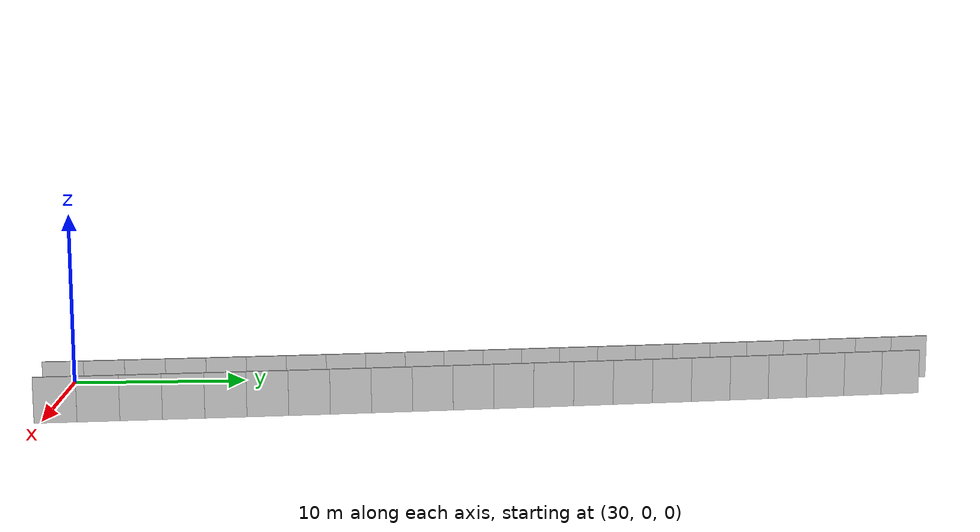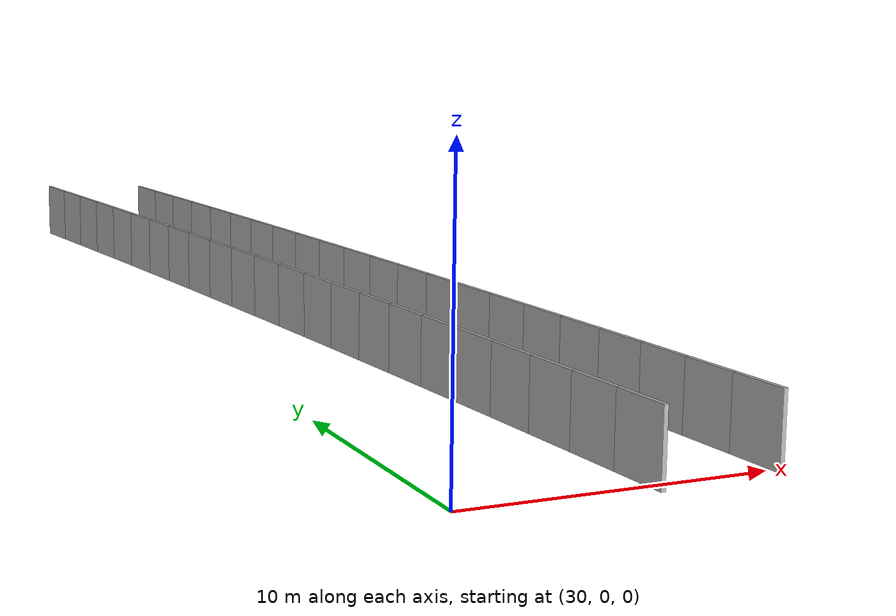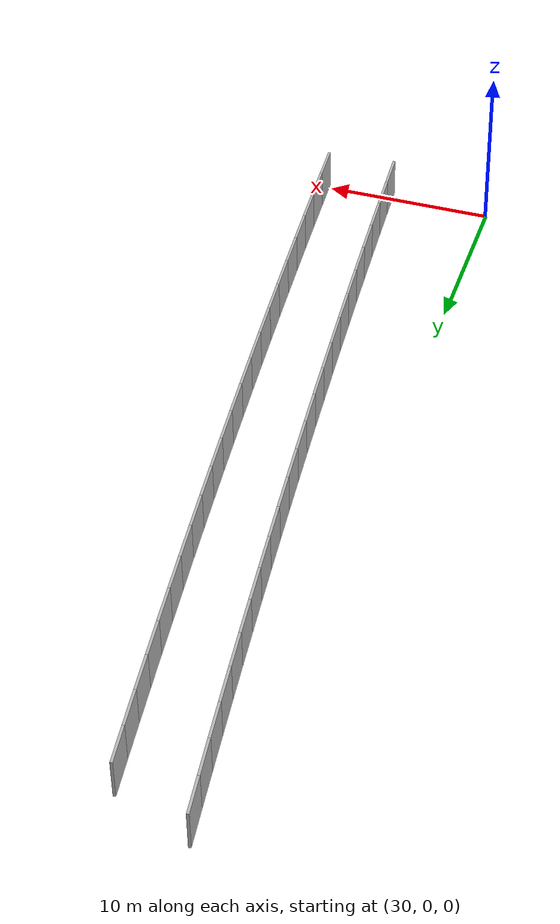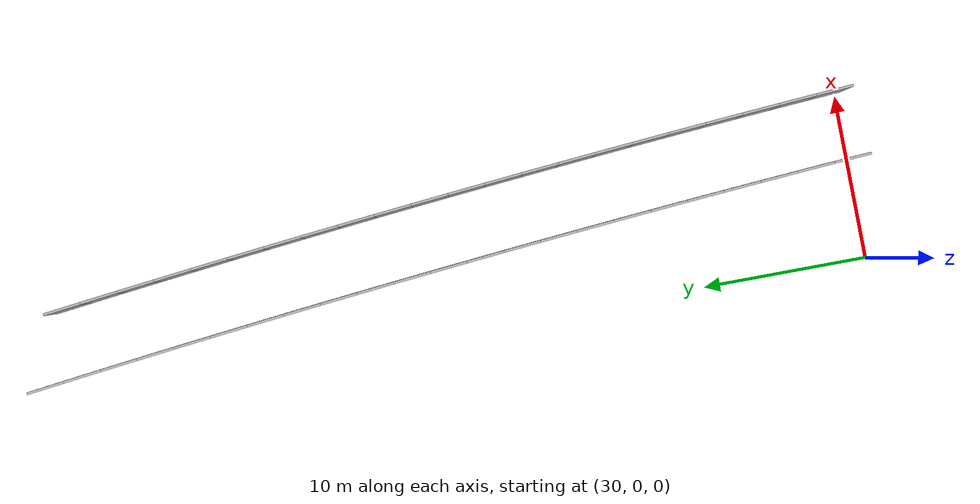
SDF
<?xml version="1.0" ?>
<sdf version="1.6">
  <model name="sps_4626">
    <pose frame="">0 0 0 0 -0 0</pose>
    <static>1</static>
    <self_collide>0</self_collide>
    <allow_auto_disable>0</allow_auto_disable>
    <link name="Wall4576">
      <kinematic>0</kinematic>
      <gravity>1</gravity>
      <self_collide>0</self_collide>
      <collision name="collision">
        <geometry>
          <box>
            <size>2.25473 0.15 2.5</size>
          </box>
        </geometry>
        <pose frame="">0 0 0 0 -0 0</pose>
      </collision>
      <visual name="visual">
        <geometry>
          <box>
            <size>2.25473 0.15 2.5</size>
          </box>
        </geometry>
        <pose frame="">0 0 0 0 -0 0</pose>
        <cast_shadows>1</cast_shadows>
        <transparency>0.0</transparency>
      </visual>
      <pose frame="">40.2125 0.755813 1.25 0 -0 1.63961</pose>
    </link>
    <link name="Wall4577">
      <kinematic>0</kinematic>
      <gravity>1</gravity>
      <self_collide>0</self_collide>
      <collision name="collision">
        <geometry>
          <box>
            <size>2.25463 0.15 2.5</size>
          </box>
        </geometry>
        <pose frame="">0 0 0 0 -0 0</pose>
      </collision>
      <visual name="visual">
        <geometry>
          <box>
            <size>2.25463 0.15 2.5</size>
          </box>
        </geometry>
        <pose frame="">0 0 0 0 -0 0</pose>
        <cast_shadows>1</cast_shadows>
        <transparency>0.0</transparency>
      </visual>
      <pose frame="">40.0551 3.00499 1.25 0 -0 1.64173</pose>
    </link>
    <link name="Wall4578">
      <kinematic>0</kinematic>
      <gravity>1</gravity>
      <self_collide>0</self_collide>
      <collision name="collision">
        <geometry>
          <box>
            <size>2.2545 0.15 2.5</size>
          </box>
        </geometry>
        <pose frame="">0 0 0 0 -0 0</pose>
      </collision>
      <visual name="visual">
        <geometry>
          <box>
            <size>2.2545 0.15 2.5</size>
          </box>
        </geometry>
        <pose frame="">0 0 0 0 -0 0</pose>
        <cast_shadows>1</cast_shadows>
        <transparency>0.0</transparency>
      </visual>
      <pose frame="">39.8924 5.25368 1.25 0 -0 1.64431</pose>
    </link>
    <link name="Wall4579">
      <kinematic>0</kinematic>
      <gravity>1</gravity>
      <self_collide>0</self_collide>
      <collision name="collision">
        <geometry>
          <box>
            <size>2.25469 0.15 2.5</size>
          </box>
        </geometry>
        <pose frame="">0 0 0 0 -0 0</pose>
      </collision>
      <visual name="visual">
        <geometry>
          <box>
            <size>2.25469 0.15 2.5</size>
          </box>
        </geometry>
        <pose frame="">0 0 0 0 -0 0</pose>
        <cast_shadows>1</cast_shadows>
        <transparency>0.0</transparency>
      </visual>
      <pose frame="">39.7244 7.502 1.25 0 -0 1.64653</pose>
    </link>
    <link name="Wall4580">
      <kinematic>0</kinematic>
      <gravity>1</gravity>
      <self_collide>0</self_collide>
      <collision name="collision">
        <geometry>
          <box>
            <size>2.2547 0.15 2.5</size>
          </box>
        </geometry>
        <pose frame="">0 0 0 0 -0 0</pose>
      </collision>
      <visual name="visual">
        <geometry>
          <box>
            <size>2.2547 0.15 2.5</size>
          </box>
        </geometry>
        <pose frame="">0 0 0 0 -0 0</pose>
        <cast_shadows>1</cast_shadows>
        <transparency>0.0</transparency>
      </visual>
      <pose frame="">39.551 9.75001 1.25 0 -0 1.64903</pose>
    </link>
    <link name="Wall4581">
      <kinematic>0</kinematic>
      <gravity>1</gravity>
      <self_collide>0</self_collide>
      <collision name="collision">
        <geometry>
          <box>
            <size>2.2545 0.15 2.5</size>
          </box>
        </geometry>
        <pose frame="">0 0 0 0 -0 0</pose>
      </collision>
      <visual name="visual">
        <geometry>
          <box>
            <size>2.2545 0.15 2.5</size>
          </box>
        </geometry>
        <pose frame="">0 0 0 0 -0 0</pose>
        <cast_shadows>1</cast_shadows>
        <transparency>0.0</transparency>
      </visual>
      <pose frame="">39.3722 11.9975 1.25 0 -0 1.65134</pose>
    </link>
    <link name="Wall4582">
      <kinematic>0</kinematic>
      <gravity>1</gravity>
      <self_collide>0</self_collide>
      <collision name="collision">
        <geometry>
          <box>
            <size>2.25452 0.15 2.5</size>
          </box>
        </geometry>
        <pose frame="">0 0 0 0 -0 0</pose>
      </collision>
      <visual name="visual">
        <geometry>
          <box>
            <size>2.25452 0.15 2.5</size>
          </box>
        </geometry>
        <pose frame="">0 0 0 0 -0 0</pose>
        <cast_shadows>1</cast_shadows>
        <transparency>0.0</transparency>
      </visual>
      <pose frame="">39.188 14.2445 1.25 0 -0 1.65376</pose>
    </link>
    <link name="Wall4583">
      <kinematic>0</kinematic>
      <gravity>1</gravity>
      <self_collide>0</self_collide>
      <collision name="collision">
        <geometry>
          <box>
            <size>2.25388 0.15 2.5</size>
          </box>
        </geometry>
        <pose frame="">0 0 0 0 -0 0</pose>
      </collision>
      <visual name="visual">
        <geometry>
          <box>
            <size>2.25388 0.15 2.5</size>
          </box>
        </geometry>
        <pose frame="">0 0 0 0 -0 0</pose>
        <cast_shadows>1</cast_shadows>
        <transparency>0.0</transparency>
      </visual>
      <pose frame="">38.9981 16.4907 1.25 0 -0 1.65653</pose>
    </link>
    <link name="Wall4584">
      <kinematic>0</kinematic>
      <gravity>1</gravity>
      <self_collide>0</self_collide>
      <collision name="collision">
        <geometry>
          <box>
            <size>2.25489 0.15 2.5</size>
          </box>
        </geometry>
        <pose frame="">0 0 0 0 -0 0</pose>
      </collision>
      <visual name="visual">
        <geometry>
          <box>
            <size>2.25489 0.15 2.5</size>
          </box>
        </geometry>
        <pose frame="">0 0 0 0 -0 0</pose>
        <cast_shadows>1</cast_shadows>
        <transparency>0.0</transparency>
      </visual>
      <pose frame="">38.8028 18.7366 1.25 0 -0 1.65853</pose>
    </link>
    <link name="Wall4585">
      <kinematic>0</kinematic>
      <gravity>1</gravity>
      <self_collide>0</self_collide>
      <collision name="collision">
        <geometry>
          <box>
            <size>2.25432 0.15 2.5</size>
          </box>
        </geometry>
        <pose frame="">0 0 0 0 -0 0</pose>
      </collision>
      <visual name="visual">
        <geometry>
          <box>
            <size>2.25432 0.15 2.5</size>
          </box>
        </geometry>
        <pose frame="">0 0 0 0 -0 0</pose>
        <cast_shadows>1</cast_shadows>
        <transparency>0.0</transparency>
      </visual>
      <pose frame="">38.6027 20.9823 1.25 0 -0 1.66089</pose>
    </link>
    <link name="Wall4586">
      <kinematic>0</kinematic>
      <gravity>1</gravity>
      <self_collide>0</self_collide>
      <collision name="collision">
        <geometry>
          <box>
            <size>2.25487 0.15 2.5</size>
          </box>
        </geometry>
        <pose frame="">0 0 0 0 -0 0</pose>
      </collision>
      <visual name="visual">
        <geometry>
          <box>
            <size>2.25487 0.15 2.5</size>
          </box>
        </geometry>
        <pose frame="">0 0 0 0 -0 0</pose>
        <cast_shadows>1</cast_shadows>
        <transparency>0.0</transparency>
      </visual>
      <pose frame="">38.3971 23.2275 1.25 0 -0 1.66326</pose>
    </link>
    <link name="Wall4587">
      <kinematic>0</kinematic>
      <gravity>1</gravity>
      <self_collide>0</self_collide>
      <collision name="collision">
        <geometry>
          <box>
            <size>2.25453 0.15 2.5</size>
          </box>
        </geometry>
        <pose frame="">0 0 0 0 -0 0</pose>
      </collision>
      <visual name="visual">
        <geometry>
          <box>
            <size>2.25453 0.15 2.5</size>
          </box>
        </geometry>
        <pose frame="">0 0 0 0 -0 0</pose>
        <cast_shadows>1</cast_shadows>
        <transparency>0.0</transparency>
      </visual>
      <pose frame="">38.1862 25.4723 1.25 0 -0 1.66569</pose>
    </link>
    <link name="Wall4588">
      <kinematic>0</kinematic>
      <gravity>1</gravity>
      <self_collide>0</self_collide>
      <collision name="collision">
        <geometry>
          <box>
            <size>2.25441 0.15 2.5</size>
          </box>
        </geometry>
        <pose frame="">0 0 0 0 -0 0</pose>
      </collision>
      <visual name="visual">
        <geometry>
          <box>
            <size>2.25441 0.15 2.5</size>
          </box>
        </geometry>
        <pose frame="">0 0 0 0 -0 0</pose>
        <cast_shadows>1</cast_shadows>
        <transparency>0.0</transparency>
      </visual>
      <pose frame="">37.9701 27.7164 1.25 0 -0 1.66798</pose>
    </link>
    <link name="Wall4589">
      <kinematic>0</kinematic>
      <gravity>1</gravity>
      <self_collide>0</self_collide>
      <collision name="collision">
        <geometry>
          <box>
            <size>2.25475 0.15 2.5</size>
          </box>
        </geometry>
        <pose frame="">0 0 0 0 -0 0</pose>
      </collision>
      <visual name="visual">
        <geometry>
          <box>
            <size>2.25475 0.15 2.5</size>
          </box>
        </geometry>
        <pose frame="">0 0 0 0 -0 0</pose>
        <cast_shadows>1</cast_shadows>
        <transparency>0.0</transparency>
      </visual>
      <pose frame="">37.7487 29.9601 1.25 0 -0 1.67031</pose>
    </link>
    <link name="Wall4590">
      <kinematic>0</kinematic>
      <gravity>1</gravity>
      <self_collide>0</self_collide>
      <collision name="collision">
        <geometry>
          <box>
            <size>2.25458 0.15 2.5</size>
          </box>
        </geometry>
        <pose frame="">0 0 0 0 -0 0</pose>
      </collision>
      <visual name="visual">
        <geometry>
          <box>
            <size>2.25458 0.15 2.5</size>
          </box>
        </geometry>
        <pose frame="">0 0 0 0 -0 0</pose>
        <cast_shadows>1</cast_shadows>
        <transparency>0.0</transparency>
      </visual>
      <pose frame="">37.5219 32.2033 1.25 0 -0 1.67282</pose>
    </link>
    <link name="Wall4591">
      <kinematic>0</kinematic>
      <gravity>1</gravity>
      <self_collide>0</self_collide>
      <collision name="collision">
        <geometry>
          <box>
            <size>2.25481 0.15 2.5</size>
          </box>
        </geometry>
        <pose frame="">0 0 0 0 -0 0</pose>
      </collision>
      <visual name="visual">
        <geometry>
          <box>
            <size>2.25481 0.15 2.5</size>
          </box>
        </geometry>
        <pose frame="">0 0 0 0 -0 0</pose>
        <cast_shadows>1</cast_shadows>
        <transparency>0.0</transparency>
      </visual>
      <pose frame="">37.2897 34.446 1.25 0 -0 1.67512</pose>
    </link>
    <link name="Wall4592">
      <kinematic>0</kinematic>
      <gravity>1</gravity>
      <self_collide>0</self_collide>
      <collision name="collision">
        <geometry>
          <box>
            <size>2.25463 0.15 2.5</size>
          </box>
        </geometry>
        <pose frame="">0 0 0 0 -0 0</pose>
      </collision>
      <visual name="visual">
        <geometry>
          <box>
            <size>2.25463 0.15 2.5</size>
          </box>
        </geometry>
        <pose frame="">0 0 0 0 -0 0</pose>
        <cast_shadows>1</cast_shadows>
        <transparency>0.0</transparency>
      </visual>
      <pose frame="">37.0523 36.6882 1.25 0 -0 1.67744</pose>
    </link>
    <link name="Wall4593">
      <kinematic>0</kinematic>
      <gravity>1</gravity>
      <self_collide>0</self_collide>
      <collision name="collision">
        <geometry>
          <box>
            <size>2.25465 0.15 2.5</size>
          </box>
        </geometry>
        <pose frame="">0 0 0 0 -0 0</pose>
      </collision>
      <visual name="visual">
        <geometry>
          <box>
            <size>2.25465 0.15 2.5</size>
          </box>
        </geometry>
        <pose frame="">0 0 0 0 -0 0</pose>
        <cast_shadows>1</cast_shadows>
        <transparency>0.0</transparency>
      </visual>
      <pose frame="">36.8094 38.9297 1.25 0 -0 1.68003</pose>
    </link>
    <link name="Wall4594">
      <kinematic>0</kinematic>
      <gravity>1</gravity>
      <self_collide>0</self_collide>
      <collision name="collision">
        <geometry>
          <box>
            <size>2.25457 0.15 2.5</size>
          </box>
        </geometry>
        <pose frame="">0 0 0 0 -0 0</pose>
      </collision>
      <visual name="visual">
        <geometry>
          <box>
            <size>2.25457 0.15 2.5</size>
          </box>
        </geometry>
        <pose frame="">0 0 0 0 -0 0</pose>
        <cast_shadows>1</cast_shadows>
        <transparency>0.0</transparency>
      </visual>
      <pose frame="">36.5612 41.1706 1.25 0 -0 1.68218</pose>
    </link>
    <link name="Wall4595">
      <kinematic>0</kinematic>
      <gravity>1</gravity>
      <self_collide>0</self_collide>
      <collision name="collision">
        <geometry>
          <box>
            <size>2.2546 0.15 2.5</size>
          </box>
        </geometry>
        <pose frame="">0 0 0 0 -0 0</pose>
      </collision>
      <visual name="visual">
        <geometry>
          <box>
            <size>2.2546 0.15 2.5</size>
          </box>
        </geometry>
        <pose frame="">0 0 0 0 -0 0</pose>
        <cast_shadows>1</cast_shadows>
        <transparency>0.0</transparency>
      </visual>
      <pose frame="">36.3078 43.4109 1.25 0 -0 1.68469</pose>
    </link>
    <link name="Wall4596">
      <kinematic>0</kinematic>
      <gravity>1</gravity>
      <self_collide>0</self_collide>
      <collision name="collision">
        <geometry>
          <box>
            <size>2.25459 0.15 2.5</size>
          </box>
        </geometry>
        <pose frame="">0 0 0 0 -0 0</pose>
      </collision>
      <visual name="visual">
        <geometry>
          <box>
            <size>2.25459 0.15 2.5</size>
          </box>
        </geometry>
        <pose frame="">0 0 0 0 -0 0</pose>
        <cast_shadows>1</cast_shadows>
        <transparency>0.0</transparency>
      </visual>
      <pose frame="">36.0489 45.6506 1.25 0 -0 1.68701</pose>
    </link>
    <link name="Wall4597">
      <kinematic>0</kinematic>
      <gravity>1</gravity>
      <self_collide>0</self_collide>
      <collision name="collision">
        <geometry>
          <box>
            <size>2.25467 0.15 2.5</size>
          </box>
        </geometry>
        <pose frame="">0 0 0 0 -0 0</pose>
      </collision>
      <visual name="visual">
        <geometry>
          <box>
            <size>2.25467 0.15 2.5</size>
          </box>
        </geometry>
        <pose frame="">0 0 0 0 -0 0</pose>
        <cast_shadows>1</cast_shadows>
        <transparency>0.0</transparency>
      </visual>
      <pose frame="">35.7848 47.8897 1.25 0 -0 1.6894</pose>
    </link>
    <link name="Wall6301">
      <kinematic>0</kinematic>
      <gravity>1</gravity>
      <self_collide>0</self_collide>
      <collision name="collision">
        <geometry>
          <box>
            <size>2.24467 0.15 2.5</size>
          </box>
        </geometry>
        <pose frame="">0 0 0 0 -0 0</pose>
      </collision>
      <visual name="visual">
        <geometry>
          <box>
            <size>2.24467 0.15 2.5</size>
          </box>
        </geometry>
        <pose frame="">0 0 0 0 -0 0</pose>
        <cast_shadows>1</cast_shadows>
        <transparency>0.0</transparency>
      </visual>
      <pose frame="">36.0831 0.471389 1.25 0 -0 1.63945</pose>
    </link>
    <link name="Wall6302">
      <kinematic>0</kinematic>
      <gravity>1</gravity>
      <self_collide>0</self_collide>
      <collision name="collision">
        <geometry>
          <box>
            <size>2.24486 0.15 2.5</size>
          </box>
        </geometry>
        <pose frame="">0 0 0 0 -0 0</pose>
      </collision>
      <visual name="visual">
        <geometry>
          <box>
            <size>2.24486 0.15 2.5</size>
          </box>
        </geometry>
        <pose frame="">0 0 0 0 -0 0</pose>
        <cast_shadows>1</cast_shadows>
        <transparency>0.0</transparency>
      </visual>
      <pose frame="">35.9264 2.71068 1.25 0 -0 1.64187</pose>
    </link>
    <link name="Wall6303">
      <kinematic>0</kinematic>
      <gravity>1</gravity>
      <self_collide>0</self_collide>
      <collision name="collision">
        <geometry>
          <box>
            <size>2.24507 0.15 2.5</size>
          </box>
        </geometry>
        <pose frame="">0 0 0 0 -0 0</pose>
      </collision>
      <visual name="visual">
        <geometry>
          <box>
            <size>2.24507 0.15 2.5</size>
          </box>
        </geometry>
        <pose frame="">0 0 0 0 -0 0</pose>
        <cast_shadows>1</cast_shadows>
        <transparency>0.0</transparency>
      </visual>
      <pose frame="">35.7642 4.94978 1.25 0 -0 1.64427</pose>
    </link>
    <link name="Wall6304">
      <kinematic>0</kinematic>
      <gravity>1</gravity>
      <self_collide>0</self_collide>
      <collision name="collision">
        <geometry>
          <box>
            <size>2.24467 0.15 2.5</size>
          </box>
        </geometry>
        <pose frame="">0 0 0 0 -0 0</pose>
      </collision>
      <visual name="visual">
        <geometry>
          <box>
            <size>2.24467 0.15 2.5</size>
          </box>
        </geometry>
        <pose frame="">0 0 0 0 -0 0</pose>
        <cast_shadows>1</cast_shadows>
        <transparency>0.0</transparency>
      </visual>
      <pose frame="">35.5969 7.1884 1.25 0 -0 1.6466</pose>
    </link>
    <link name="Wall6305">
      <kinematic>0</kinematic>
      <gravity>1</gravity>
      <self_collide>0</self_collide>
      <collision name="collision">
        <geometry>
          <box>
            <size>2.24466 0.15 2.5</size>
          </box>
        </geometry>
        <pose frame="">0 0 0 0 -0 0</pose>
      </collision>
      <visual name="visual">
        <geometry>
          <box>
            <size>2.24466 0.15 2.5</size>
          </box>
        </geometry>
        <pose frame="">0 0 0 0 -0 0</pose>
        <cast_shadows>1</cast_shadows>
        <transparency>0.0</transparency>
      </visual>
      <pose frame="">35.4242 9.42641 1.25 0 -0 1.64902</pose>
    </link>
    <link name="Wall6306">
      <kinematic>0</kinematic>
      <gravity>1</gravity>
      <self_collide>0</self_collide>
      <collision name="collision">
        <geometry>
          <box>
            <size>2.24489 0.15 2.5</size>
          </box>
        </geometry>
        <pose frame="">0 0 0 0 -0 0</pose>
      </collision>
      <visual name="visual">
        <geometry>
          <box>
            <size>2.24489 0.15 2.5</size>
          </box>
        </geometry>
        <pose frame="">0 0 0 0 -0 0</pose>
        <cast_shadows>1</cast_shadows>
        <transparency>0.0</transparency>
      </visual>
      <pose frame="">35.2461 11.6641 1.25 0 -0 1.65133</pose>
    </link>
    <link name="Wall6307">
      <kinematic>0</kinematic>
      <gravity>1</gravity>
      <self_collide>0</self_collide>
      <collision name="collision">
        <geometry>
          <box>
            <size>2.2449 0.15 2.5</size>
          </box>
        </geometry>
        <pose frame="">0 0 0 0 -0 0</pose>
      </collision>
      <visual name="visual">
        <geometry>
          <box>
            <size>2.2449 0.15 2.5</size>
          </box>
        </geometry>
        <pose frame="">0 0 0 0 -0 0</pose>
        <cast_shadows>1</cast_shadows>
        <transparency>0.0</transparency>
      </visual>
      <pose frame="">35.0629 13.9015 1.25 0 -0 1.65373</pose>
    </link>
    <link name="Wall6308">
      <kinematic>0</kinematic>
      <gravity>1</gravity>
      <self_collide>0</self_collide>
      <collision name="collision">
        <geometry>
          <box>
            <size>2.24366 0.15 2.5</size>
          </box>
        </geometry>
        <pose frame="">0 0 0 0 -0 0</pose>
      </collision>
      <visual name="visual">
        <geometry>
          <box>
            <size>2.24366 0.15 2.5</size>
          </box>
        </geometry>
        <pose frame="">0 0 0 0 -0 0</pose>
        <cast_shadows>1</cast_shadows>
        <transparency>0.0</transparency>
      </visual>
      <pose frame="">34.8738 16.1378 1.25 0 -0 1.65656</pose>
    </link>
    <link name="Wall6309">
      <kinematic>0</kinematic>
      <gravity>1</gravity>
      <self_collide>0</self_collide>
      <collision name="collision">
        <geometry>
          <box>
            <size>2.24501 0.15 2.5</size>
          </box>
        </geometry>
        <pose frame="">0 0 0 0 -0 0</pose>
      </collision>
      <visual name="visual">
        <geometry>
          <box>
            <size>2.24501 0.15 2.5</size>
          </box>
        </geometry>
        <pose frame="">0 0 0 0 -0 0</pose>
        <cast_shadows>1</cast_shadows>
        <transparency>0.0</transparency>
      </visual>
      <pose frame="">34.6794 18.3737 1.25 0 -0 1.65848</pose>
    </link>
    <link name="Wall6310">
      <kinematic>0</kinematic>
      <gravity>1</gravity>
      <self_collide>0</self_collide>
      <collision name="collision">
        <geometry>
          <box>
            <size>2.24469 0.15 2.5</size>
          </box>
        </geometry>
        <pose frame="">0 0 0 0 -0 0</pose>
      </collision>
      <visual name="visual">
        <geometry>
          <box>
            <size>2.24469 0.15 2.5</size>
          </box>
        </geometry>
        <pose frame="">0 0 0 0 -0 0</pose>
        <cast_shadows>1</cast_shadows>
        <transparency>0.0</transparency>
      </visual>
      <pose frame="">34.4802 20.6097 1.25 0 -0 1.66084</pose>
    </link>
    <link name="Wall6311">
      <kinematic>0</kinematic>
      <gravity>1</gravity>
      <self_collide>0</self_collide>
      <collision name="collision">
        <geometry>
          <box>
            <size>2.24483 0.15 2.5</size>
          </box>
        </geometry>
        <pose frame="">0 0 0 0 -0 0</pose>
      </collision>
      <visual name="visual">
        <geometry>
          <box>
            <size>2.24483 0.15 2.5</size>
          </box>
        </geometry>
        <pose frame="">0 0 0 0 -0 0</pose>
        <cast_shadows>1</cast_shadows>
        <transparency>0.0</transparency>
      </visual>
      <pose frame="">34.2755 22.8451 1.25 0 -0 1.66332</pose>
    </link>
    <link name="Wall6312">
      <kinematic>0</kinematic>
      <gravity>1</gravity>
      <self_collide>0</self_collide>
      <collision name="collision">
        <geometry>
          <box>
            <size>2.24463 0.15 2.5</size>
          </box>
        </geometry>
        <pose frame="">0 0 0 0 -0 0</pose>
      </collision>
      <visual name="visual">
        <geometry>
          <box>
            <size>2.24463 0.15 2.5</size>
          </box>
        </geometry>
        <pose frame="">0 0 0 0 -0 0</pose>
        <cast_shadows>1</cast_shadows>
        <transparency>0.0</transparency>
      </visual>
      <pose frame="">34.0656 25.08 1.25 0 -0 1.66556</pose>
    </link>
    <link name="Wall6313">
      <kinematic>0</kinematic>
      <gravity>1</gravity>
      <self_collide>0</self_collide>
      <collision name="collision">
        <geometry>
          <box>
            <size>2.24478 0.15 2.5</size>
          </box>
        </geometry>
        <pose frame="">0 0 0 0 -0 0</pose>
      </collision>
      <visual name="visual">
        <geometry>
          <box>
            <size>2.24478 0.15 2.5</size>
          </box>
        </geometry>
        <pose frame="">0 0 0 0 -0 0</pose>
        <cast_shadows>1</cast_shadows>
        <transparency>0.0</transparency>
      </visual>
      <pose frame="">33.8505 27.3144 1.25 0 -0 1.66796</pose>
    </link>
    <link name="Wall6314">
      <kinematic>0</kinematic>
      <gravity>1</gravity>
      <self_collide>0</self_collide>
      <collision name="collision">
        <geometry>
          <box>
            <size>2.24479 0.15 2.5</size>
          </box>
        </geometry>
        <pose frame="">0 0 0 0 -0 0</pose>
      </collision>
      <visual name="visual">
        <geometry>
          <box>
            <size>2.24479 0.15 2.5</size>
          </box>
        </geometry>
        <pose frame="">0 0 0 0 -0 0</pose>
        <cast_shadows>1</cast_shadows>
        <transparency>0.0</transparency>
      </visual>
      <pose frame="">33.63 29.5483 1.25 0 -0 1.67048</pose>
    </link>
    <link name="Wall6315">
      <kinematic>0</kinematic>
      <gravity>1</gravity>
      <self_collide>0</self_collide>
      <collision name="collision">
        <geometry>
          <box>
            <size>2.2448 0.15 2.5</size>
          </box>
        </geometry>
        <pose frame="">0 0 0 0 -0 0</pose>
      </collision>
      <visual name="visual">
        <geometry>
          <box>
            <size>2.2448 0.15 2.5</size>
          </box>
        </geometry>
        <pose frame="">0 0 0 0 -0 0</pose>
        <cast_shadows>1</cast_shadows>
        <transparency>0.0</transparency>
      </visual>
      <pose frame="">33.4041 31.7817 1.25 0 -0 1.67272</pose>
    </link>
    <link name="Wall6316">
      <kinematic>0</kinematic>
      <gravity>1</gravity>
      <self_collide>0</self_collide>
      <collision name="collision">
        <geometry>
          <box>
            <size>2.24482 0.15 2.5</size>
          </box>
        </geometry>
        <pose frame="">0 0 0 0 -0 0</pose>
      </collision>
      <visual name="visual">
        <geometry>
          <box>
            <size>2.24482 0.15 2.5</size>
          </box>
        </geometry>
        <pose frame="">0 0 0 0 -0 0</pose>
        <cast_shadows>1</cast_shadows>
        <transparency>0.0</transparency>
      </visual>
      <pose frame="">33.173 34.0146 1.25 0 -0 1.67515</pose>
    </link>
    <link name="Wall6317">
      <kinematic>0</kinematic>
      <gravity>1</gravity>
      <self_collide>0</self_collide>
      <collision name="collision">
        <geometry>
          <box>
            <size>2.24476 0.15 2.5</size>
          </box>
        </geometry>
        <pose frame="">0 0 0 0 -0 0</pose>
      </collision>
      <visual name="visual">
        <geometry>
          <box>
            <size>2.24476 0.15 2.5</size>
          </box>
        </geometry>
        <pose frame="">0 0 0 0 -0 0</pose>
        <cast_shadows>1</cast_shadows>
        <transparency>0.0</transparency>
      </visual>
      <pose frame="">32.9365 36.2469 1.25 0 -0 1.67748</pose>
    </link>
    <link name="Wall6318">
      <kinematic>0</kinematic>
      <gravity>1</gravity>
      <self_collide>0</self_collide>
      <collision name="collision">
        <geometry>
          <box>
            <size>2.24481 0.15 2.5</size>
          </box>
        </geometry>
        <pose frame="">0 0 0 0 -0 0</pose>
      </collision>
      <visual name="visual">
        <geometry>
          <box>
            <size>2.24481 0.15 2.5</size>
          </box>
        </geometry>
        <pose frame="">0 0 0 0 -0 0</pose>
        <cast_shadows>1</cast_shadows>
        <transparency>0.0</transparency>
      </visual>
      <pose frame="">32.6948 38.4786 1.25 0 -0 1.67996</pose>
    </link>
    <link name="Wall6319">
      <kinematic>0</kinematic>
      <gravity>1</gravity>
      <self_collide>0</self_collide>
      <collision name="collision">
        <geometry>
          <box>
            <size>2.24488 0.15 2.5</size>
          </box>
        </geometry>
        <pose frame="">0 0 0 0 -0 0</pose>
      </collision>
      <visual name="visual">
        <geometry>
          <box>
            <size>2.24488 0.15 2.5</size>
          </box>
        </geometry>
        <pose frame="">0 0 0 0 -0 0</pose>
        <cast_shadows>1</cast_shadows>
        <transparency>0.0</transparency>
      </visual>
      <pose frame="">32.4477 40.7098 1.25 0 -0 1.68223</pose>
    </link>
    <link name="Wall6320">
      <kinematic>0</kinematic>
      <gravity>1</gravity>
      <self_collide>0</self_collide>
      <collision name="collision">
        <geometry>
          <box>
            <size>2.24476 0.15 2.5</size>
          </box>
        </geometry>
        <pose frame="">0 0 0 0 -0 0</pose>
      </collision>
      <visual name="visual">
        <geometry>
          <box>
            <size>2.24476 0.15 2.5</size>
          </box>
        </geometry>
        <pose frame="">0 0 0 0 -0 0</pose>
        <cast_shadows>1</cast_shadows>
        <transparency>0.0</transparency>
      </visual>
      <pose frame="">32.1953 42.9404 1.25 0 -0 1.68464</pose>
    </link>
    <link name="Wall6321">
      <kinematic>0</kinematic>
      <gravity>1</gravity>
      <self_collide>0</self_collide>
      <collision name="collision">
        <geometry>
          <box>
            <size>2.24477 0.15 2.5</size>
          </box>
        </geometry>
        <pose frame="">0 0 0 0 -0 0</pose>
      </collision>
      <visual name="visual">
        <geometry>
          <box>
            <size>2.24477 0.15 2.5</size>
          </box>
        </geometry>
        <pose frame="">0 0 0 0 -0 0</pose>
        <cast_shadows>1</cast_shadows>
        <transparency>0.0</transparency>
      </visual>
      <pose frame="">31.9376 45.1703 1.25 0 -0 1.68705</pose>
    </link>
    <link name="Wall6322">
      <kinematic>0</kinematic>
      <gravity>1</gravity>
      <self_collide>0</self_collide>
      <collision name="collision">
        <geometry>
          <box>
            <size>2.24478 0.15 2.5</size>
          </box>
        </geometry>
        <pose frame="">0 0 0 0 -0 0</pose>
      </collision>
      <visual name="visual">
        <geometry>
          <box>
            <size>2.24478 0.15 2.5</size>
          </box>
        </geometry>
        <pose frame="">0 0 0 0 -0 0</pose>
        <cast_shadows>1</cast_shadows>
        <transparency>0.0</transparency>
      </visual>
      <pose frame="">31.6746 47.3996 1.25 0 -0 1.6894</pose>
    </link>
    <link name="Wall6323">
      <kinematic>0</kinematic>
      <gravity>1</gravity>
      <self_collide>0</self_collide>
      <collision name="collision">
        <geometry>
          <box>
            <size>2.24409 0.15 2.5</size>
          </box>
        </geometry>
        <pose frame="">0 0 0 0 -0 0</pose>
      </collision>
      <visual name="visual">
        <geometry>
          <box>
            <size>2.24409 0.15 2.5</size>
          </box>
        </geometry>
        <pose frame="">0 0 0 0 -0 0</pose>
        <cast_shadows>1</cast_shadows>
        <transparency>0.0</transparency>
      </visual>
      <pose frame="">31.4061 49.6279 1.25 0 -0 1.6921</pose>
    </link>
  </model>
</sdf>
